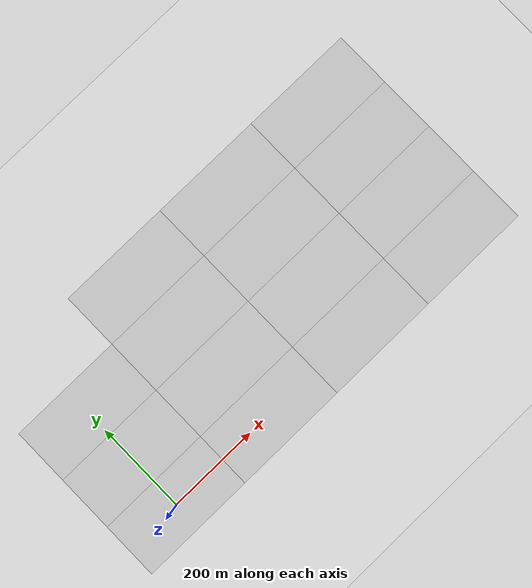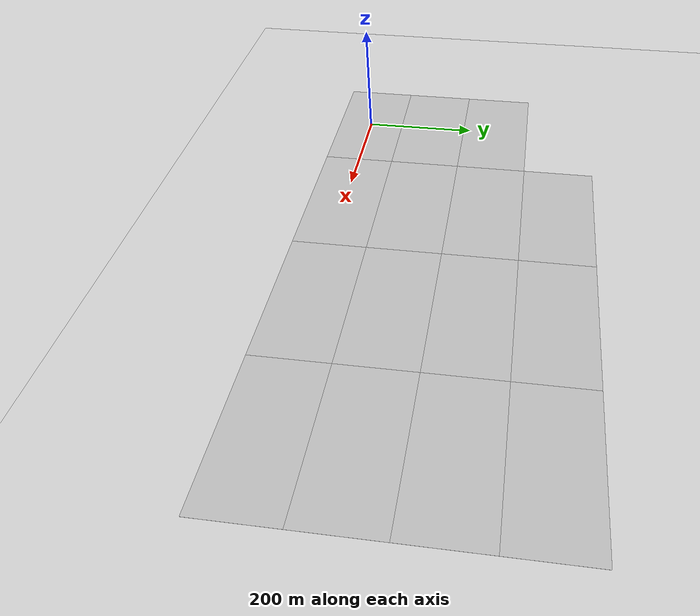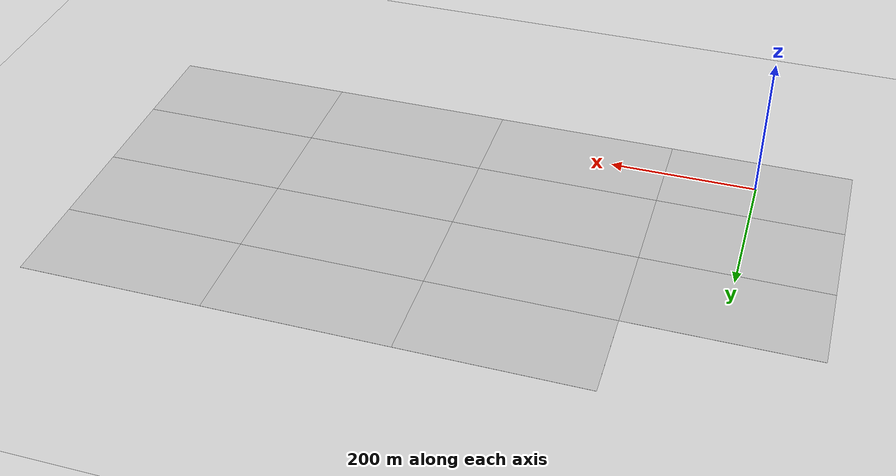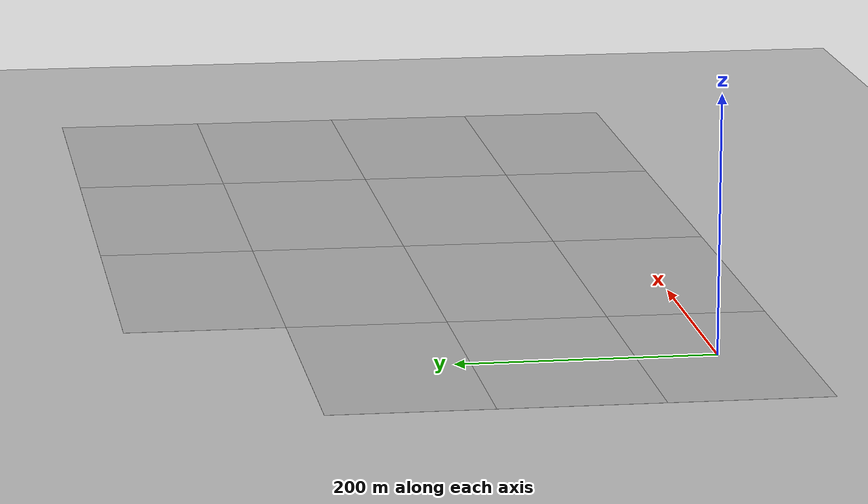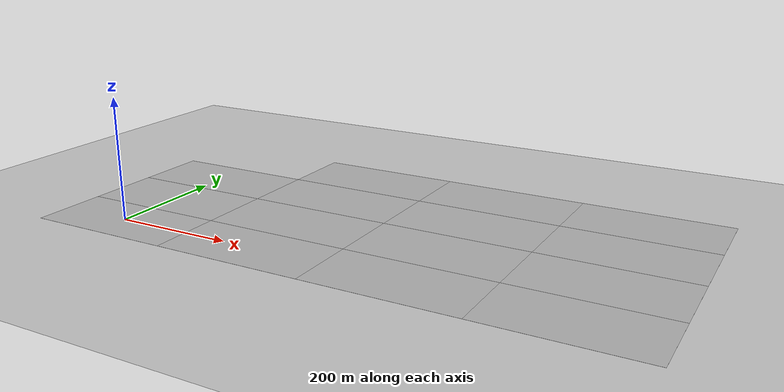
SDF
<?xml version="1.0"?>
<sdf version="1.4">
<model name="rafz">
  <static>true</static>
  <link name="rafz">
    <collision name="collision">
      <geometry>
        <plane>
          <normal>0 0 1</normal>
          <size>1000 500</size>
        </plane>
      </geometry>
      <surface>
        <friction>
          <ode>
            <mu>0.2</mu>
            <mu2>0.2</mu2>
          </ode>
        </friction>
      </surface>
    </collision>

    <visual name="visual_1">
      <pose>0 375 0 0 0 0</pose>
      <cast_shadows>false</cast_shadows>
      <geometry>
        <plane>
          <normal>0 0 1</normal>
          <size>250 125</size>
        </plane>
      </geometry>
      <material>
        <script>
          <uri>model://rafz/materials/scripts</uri>
          <uri>model://rafz/materials/textures</uri>
          <name>Rafz/Rafz1</name>
        </script>
      </material>
    </visual>

    <visual name="visual_2">
      <pose>0 250 0 0 0 0</pose>
      <cast_shadows>false</cast_shadows>
      <geometry>
        <plane>
          <normal>0 0 1</normal>
          <size>250 125</size>
        </plane>
      </geometry>
      <material>
        <script>
          <uri>model://rafz/materials/scripts</uri>
          <uri>model://rafz/materials/textures</uri>
          <name>Rafz/Rafz2</name>
        </script>
      </material>
    </visual>

    <visual name="visual_3">
      <pose>0 125 0 0 0 0</pose>
      <cast_shadows>false</cast_shadows>
      <geometry>
        <plane>
          <normal>0 0 1</normal>
          <size>250 125</size>
        </plane>
      </geometry>
      <material>
        <script>
          <uri>model://rafz/materials/scripts</uri>
          <uri>model://rafz/materials/textures</uri>
          <name>Rafz/Rafz3</name>
        </script>
      </material>
    </visual>

    <visual name="visual_4">
      <pose>0 0 0 0 0 0</pose>
      <cast_shadows>false</cast_shadows>
      <geometry>
        <plane>
          <normal>0 0 1</normal>
          <size>250 125</size>
        </plane>
      </geometry>
      <material>
        <script>
          <uri>model://rafz/materials/scripts</uri>
          <uri>model://rafz/materials/textures</uri>
          <name>Rafz/Rafz4</name>
        </script>
      </material>
    </visual>

    <visual name="visual_5">
      <pose>250 0 0 0 0 0</pose>
      <cast_shadows>false</cast_shadows>
      <geometry>
        <plane>
          <normal>0 0 1</normal>
          <size>250 125</size>
        </plane>
      </geometry>
      <material>
        <script>
          <uri>model://rafz/materials/scripts</uri>
          <uri>model://rafz/materials/textures</uri>
          <name>Rafz/Rafz5</name>
        </script>
      </material>
    </visual>

    <visual name="visual_6">
      <pose>250 125 0 0 0 0</pose>
      <cast_shadows>false</cast_shadows>
      <geometry>
        <plane>
          <normal>0 0 1</normal>
          <size>250 125</size>
        </plane>
      </geometry>
      <material>
        <script>
          <uri>model://rafz/materials/scripts</uri>
          <uri>model://rafz/materials/textures</uri>
          <name>Rafz/Rafz6</name>
        </script>
      </material>
    </visual>

    <visual name="visual_7">
      <pose>250 250 0 0 0 0</pose>
      <cast_shadows>false</cast_shadows>
      <geometry>
        <plane>
          <normal>0 0 1</normal>
          <size>250 125</size>
        </plane>
      </geometry>
      <material>
        <script>
          <uri>model://rafz/materials/scripts</uri>
          <uri>model://rafz/materials/textures</uri>
          <name>Rafz/Rafz7</name>
        </script>
      </material>
    </visual>

    <visual name="visual_8">
      <pose>250 375 0 0 0 0</pose>
      <cast_shadows>false</cast_shadows>
      <geometry>
        <plane>
          <normal>0 0 1</normal>
          <size>250 125</size>
        </plane>
      </geometry>
      <material>
        <script>
          <uri>model://rafz/materials/scripts</uri>
          <uri>model://rafz/materials/textures</uri>
          <name>Rafz/Rafz8</name>
        </script>
      </material>
    </visual>

    <visual name="visual_9">
      <pose>500 375 0 0 0 0</pose>
      <cast_shadows>false</cast_shadows>
      <geometry>
        <plane>
          <normal>0 0 1</normal>
          <size>250 125</size>
        </plane>
      </geometry>
      <material>
        <script>
          <uri>model://rafz/materials/scripts</uri>
          <uri>model://rafz/materials/textures</uri>
          <name>Rafz/Rafz9</name>
        </script>
      </material>
    </visual>

    <visual name="visual_10">
      <pose>500 250 0 0 0 0</pose>
      <cast_shadows>false</cast_shadows>
      <geometry>
        <plane>
          <normal>0 0 1</normal>
          <size>250 125</size>
        </plane>
      </geometry>
      <material>
        <script>
          <uri>model://rafz/materials/scripts</uri>
          <uri>model://rafz/materials/textures</uri>
          <name>Rafz/Rafz10</name>
        </script>
      </material>
    </visual>

    <visual name="visual_11">
      <pose>500 125 0 0 0 0</pose>
      <cast_shadows>false</cast_shadows>
      <geometry>
        <plane>
          <normal>0 0 1</normal>
          <size>250 125</size>
        </plane>
      </geometry>
      <material>
        <script>
          <uri>model://rafz/materials/scripts</uri>
          <uri>model://rafz/materials/textures</uri>
          <name>Rafz/Rafz11</name>
        </script>
      </material>
    </visual>

    <visual name="visual_12">
      <pose>500 0 0 0 0 0</pose>
      <cast_shadows>false</cast_shadows>
      <geometry>
        <plane>
          <normal>0 0 1</normal>
          <size>250 125</size>
        </plane>
      </geometry>
      <material>
        <script>
          <uri>model://rafz/materials/scripts</uri>
          <uri>model://rafz/materials/textures</uri>
          <name>Rafz/Rafz12</name>
        </script>
      </material>
    </visual>

    <visual name="visual_13">
      <pose>750 0 0 0 0 0</pose>
      <cast_shadows>false</cast_shadows>
      <geometry>
        <plane>
          <normal>0 0 1</normal>
          <size>250 125</size>
        </plane>
      </geometry>
      <material>
        <script>
          <uri>model://rafz/materials/scripts</uri>
          <uri>model://rafz/materials/textures</uri>
          <name>Rafz/Rafz13</name>
        </script>
      </material>
    </visual>

    <visual name="visual_14">
      <pose>750 125 0 0 0 0</pose>
      <cast_shadows>false</cast_shadows>
      <geometry>
        <plane>
          <normal>0 0 1</normal>
          <size>250 125</size>
        </plane>
      </geometry>
      <material>
        <script>
          <uri>model://rafz/materials/scripts</uri>
          <uri>model://rafz/materials/textures</uri>
          <name>Rafz/Rafz14</name>
        </script>
      </material>
    </visual>

    <visual name="visual_15">
      <pose>750 250 0 0 0 0</pose>
      <cast_shadows>false</cast_shadows>
      <geometry>
        <plane>
          <normal>0 0 1</normal>
          <size>250 125</size>
        </plane>
      </geometry>
      <material>
        <script>
          <uri>model://rafz/materials/scripts</uri>
          <uri>model://rafz/materials/textures</uri>
          <name>Rafz/Rafz15</name>
        </script>
      </material>
    </visual>

    <visual name="visual_16">
      <pose>750 375 0 0 0 0</pose>
      <cast_shadows>false</cast_shadows>
      <geometry>
        <plane>
          <normal>0 0 1</normal>
          <size>250 125</size>
        </plane>
      </geometry>
      <material>
        <script>
          <uri>model://rafz/materials/scripts</uri>
          <uri>model://rafz/materials/textures</uri>
          <name>Rafz/Rafz16</name>
        </script>
      </material>
    </visual>
  </link>
</model>
</sdf>
